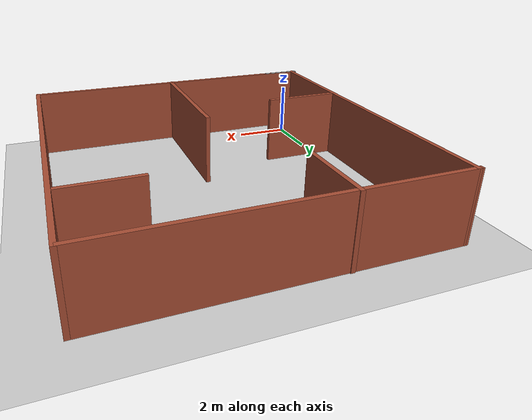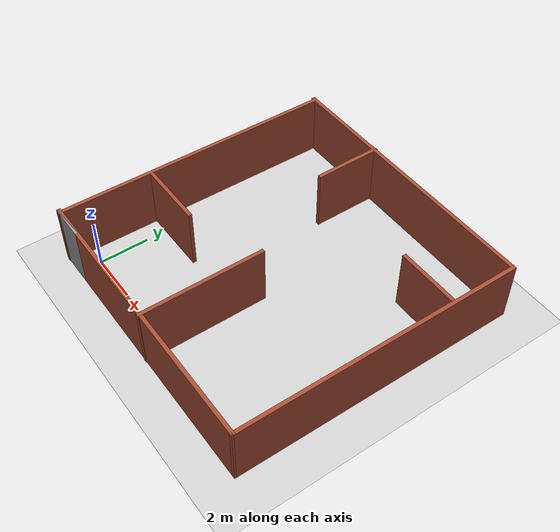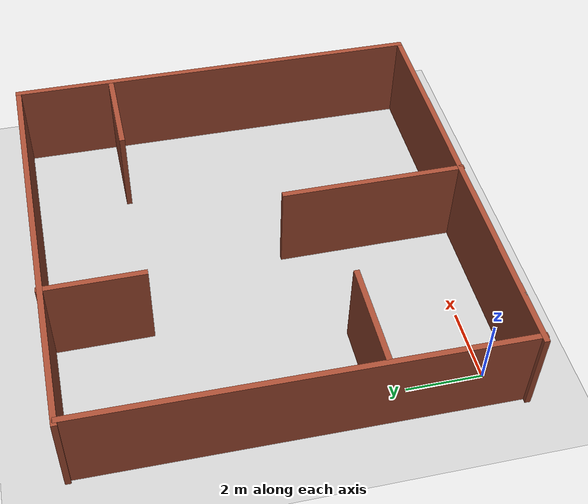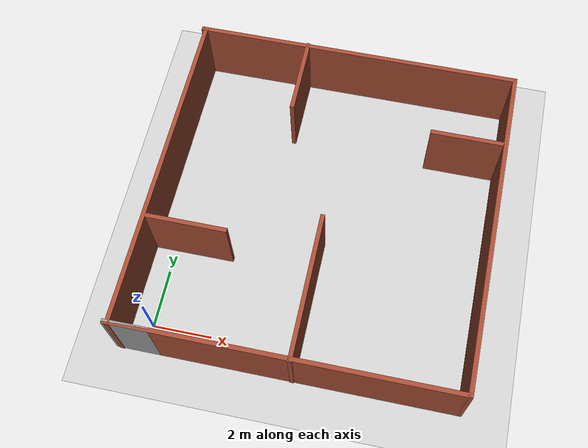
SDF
<sdf version="1.7">
 <world name="default">
  <light name="sun" type="directional">
   <pose>0 0 10 0 -0 0</pose>
   <diffuse>0.8 0.8 0.8 1</diffuse>
   <specular>0.2 0.2 0.2 1</specular>
   <attenuation>
    <range>1000</range>
    <constant>0.9</constant>
    <linear>0.01</linear>
    <quadratic>0.001</quadratic>
   </attenuation>
   <direction>-0.5 0.1 -0.9</direction>
   <spot><inner_angle>0</inner_angle><outer_angle>0</outer_angle><falloff>0</falloff></spot>
  </light>
  <model name="ground_plane">
   <static>1</static>
   <link name="link">
    <collision name="collision">
     <geometry><plane><normal>0 0 1</normal><size>100 100</size></plane></geometry>
     <surface>
      <contact><collide_bitmask>65535</collide_bitmask></contact>
      <friction><ode><mu>100</mu><mu2>50</mu2></ode></friction>
     </surface>
    </collision>
    <visual name="visual">
     <cast_shadows>0</cast_shadows>
     <geometry><plane><normal>0 0 1</normal><size>100 100</size></plane></geometry>
     <material>
      <script><uri>file://media/materials/scripts/gazebo.material</uri><name>Gazebo/Grey</name></script>
     </material>
    </visual>
   </link>
  </model>
  <gravity>0 0 -9.8</gravity>
  <magnetic_field>6e-06 2.3e-05 -4.2e-05</magnetic_field>
  <atmosphere type="adiabatic"/>
  <physics type="ode">
   <max_step_size>0.001</max_step_size>
   <real_time_factor>1</real_time_factor>
   <real_time_update_rate>1000</real_time_update_rate>
  </physics>
  <scene><ambient>0.4 0.4 0.4 1</ambient><background>0.7 0.7 0.7 1</background><shadows>1</shadows></scene>
  <spherical_coordinates>
   <surface_model>EARTH_WGS84</surface_model>
   <latitude_deg>0</latitude_deg>
   <longitude_deg>0</longitude_deg>
   <elevation>0</elevation>
   <heading_deg>0</heading_deg>
  </spherical_coordinates>
  <model name="quad_1_obs.world">
   <pose>4.80572 4.85263 0 0 -0 0</pose>
   <link name="Wall_0">
    <collision name="Wall_0_Collision">
     <geometry><box><size>11.5227 0.15 2.5</size></box></geometry>
     <pose>0 0 1.25 0 -0 0</pose>
    </collision>
    <visual name="Wall_0_Visual">
     <pose>0 0 1.25 0 -0 0</pose>
     <geometry><box><size>11.5227 0.15 2.5</size></box></geometry>
     <material>
      <script><uri>file://media/materials/scripts/gazebo.material</uri><name>Gazebo/Bricks</name></script>
      <ambient>1 1 1 1</ambient>
     </material>
     <meta><layer>0</layer></meta>
    </visual>
    <pose>-5.55601 -0.016843 0 0 -0 1.56191</pose>
   </link>
   <link name="Wall_1">
    <collision name="Wall_1_Collision">
     <geometry><box><size>11.3707 0.15 2.5</size></box></geometry>
     <pose>0 0 1.25 0 -0 0</pose>
    </collision>
    <visual name="Wall_1_Visual">
     <pose>0 0 1.25 0 -0 0</pose>
     <geometry><box><size>11.3707 0.15 2.5</size></box></geometry>
     <material>
      <script><uri>file://media/materials/scripts/gazebo.material</uri><name>Gazebo/Bricks</name></script>
      <ambient>1 1 1 1</ambient>
     </material>
     <meta><layer>0</layer></meta>
    </visual>
    <pose>0.023937 5.67911 0 0 -0 0.001793</pose>
   </link>
   <link name="Wall_10">
    <collision name="Wall_10_Collision">
     <geometry><box><size>5 0.15 2.5</size></box></geometry>
     <pose>0 0 1.25 0 -0 0</pose>
    </collision>
    <visual name="Wall_10_Visual">
     <pose>0 0 1.25 0 -0 0</pose>
     <geometry><box><size>5 0.15 2.5</size></box></geometry>
     <material>
      <script><uri>file://media/materials/scripts/gazebo.material</uri><name>Gazebo/Bricks</name></script>
      <ambient>1 1 1 1</ambient>
     </material>
     <meta><layer>0</layer></meta>
    </visual>
    <pose>0.152952 -3.28202 0 0 -0 1.5708</pose>
   </link>
   <link name="Wall_13">
    <collision name="Wall_13_Collision">
     <geometry><box><size>2.75 0.15 2.5</size></box></geometry>
     <pose>0 0 1.25 0 -0 0</pose>
    </collision>
    <visual name="Wall_13_Visual">
     <pose>0 0 1.25 0 -0 0</pose>
     <geometry><box><size>2.75 0.15 2.5</size></box></geometry>
     <material>
      <script><uri>file://media/materials/scripts/gazebo.material</uri><name>Gazebo/Bricks</name></script>
      <ambient>1 1 1 1</ambient>
     </material>
     <meta><layer>0</layer></meta>
    </visual>
    <pose>-4.13806 -1.96184 0 0 -0 0</pose>
   </link>
   <link name="Wall_15">
    <collision name="Wall_15_Collision">
     <geometry><box><size>2.5 0.15 2.5</size></box></geometry>
     <pose>0 0 1.25 0 -0 0</pose>
    </collision>
    <visual name="Wall_15_Visual">
     <pose>0 0 1.25 0 -0 0</pose>
     <geometry><box><size>2.5 0.15 2.5</size></box></geometry>
     <material>
      <script><uri>file://media/materials/scripts/gazebo.material</uri><name>Gazebo/Bricks</name></script>
      <ambient>1 1 1 1</ambient>
     </material>
     <meta><layer>0</layer></meta>
    </visual>
    <pose>4.36734 3.03481 0 0 -0 3.14159</pose>
   </link>
   <link name="Wall_18">
    <collision name="Wall_18_Collision">
     <geometry><box><size>2.75 0.15 2.5</size></box></geometry>
     <pose>0 0 1.25 0 -0 0</pose>
    </collision>
    <visual name="Wall_18_Visual">
     <pose>0 0 1.25 0 -0 0</pose>
     <geometry><box><size>2.75 0.15 2.5</size></box></geometry>
     <material>
      <script><uri>file://media/materials/scripts/gazebo.material</uri><name>Gazebo/Bricks</name></script>
      <ambient>1 1 1 1</ambient>
     </material>
     <meta><layer>0</layer></meta>
    </visual>
    <pose>-1.7322 4.40702 0 0 -0 -1.5708</pose>
   </link>
   <link name="Wall_2">
    <collision name="Wall_2_Collision">
     <geometry><box><size>11.523 0.15 2.5</size></box></geometry>
     <pose>0 0 1.25 0 -0 0</pose>
    </collision>
    <visual name="Wall_2_Visual">
     <pose>0 0 1.25 0 -0 0</pose>
     <geometry><box><size>11.523 0.15 2.5</size></box></geometry>
     <material>
      <script><uri>file://media/materials/scripts/gazebo.material</uri><name>Gazebo/Bricks</name></script>
      <ambient>1 1 1 1</ambient>
     </material>
     <meta><layer>0</layer></meta>
    </visual>
    <pose>5.67473 0.00327 0 0 -0 -1.57791</pose>
   </link>
   <link name="Wall_3">
    <collision name="Wall_3_Collision">
     <geometry><box><size>11.5 0.15 2.5</size></box></geometry>
     <pose>0 0 1.25 0 -0 0</pose>
    </collision>
    <visual name="Wall_3_Visual">
     <pose>0 0 1.25 0 -0 0</pose>
     <geometry><box><size>11.5 0.15 2.5</size></box></geometry>
     <material>
      <script><uri>file://media/materials/scripts/gazebo.material</uri><name>Gazebo/Bricks</name></script>
      <ambient>1 1 1 1</ambient>
     </material>
     <meta><layer>0</layer></meta>
    </visual>
    <pose>-0.040723 -5.68263 0 0 -0 3.14159</pose>
   </link>
   <link name="Wall_4">
    <collision name="Wall_4_Collision">
     <geometry><box><size>1.5 0.15 2.5</size></box></geometry>
     <pose>0 0 1.25 0 -0 0</pose>
    </collision>
    <visual name="Wall_4_Visual">
     <pose>0 0 1.25 0 -0 0</pose>
     <geometry><box><size>1.5 0.15 2.5</size></box></geometry>
     <material>
      <script><uri>file://media/materials/scripts/gazebo.material</uri><name>Gazebo/Grey</name></script>
      <ambient>1 1 1 1</ambient>
     </material>
     <meta><layer>0</layer></meta>
    </visual>
    <pose>-5.04072 -5.68263 0 0 -0 0</pose>
   </link>
   <static>1</static>
  </model>
 </world>
</sdf>
